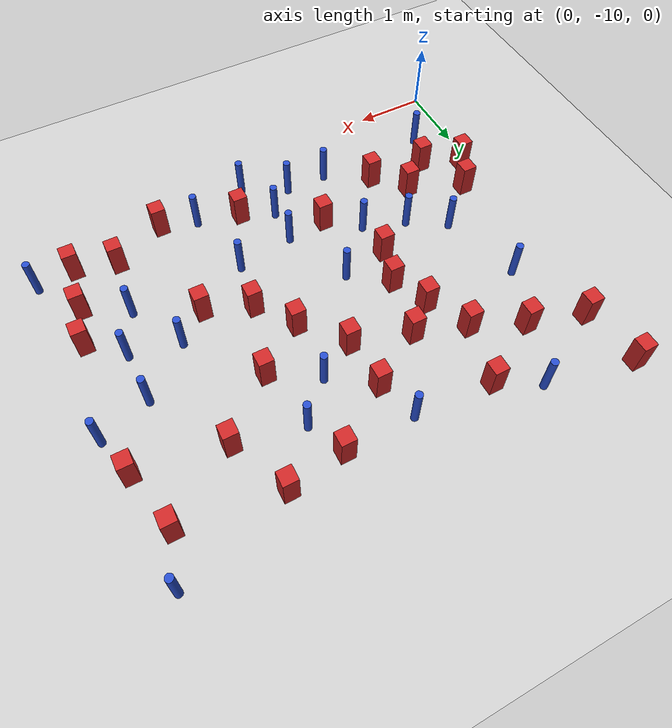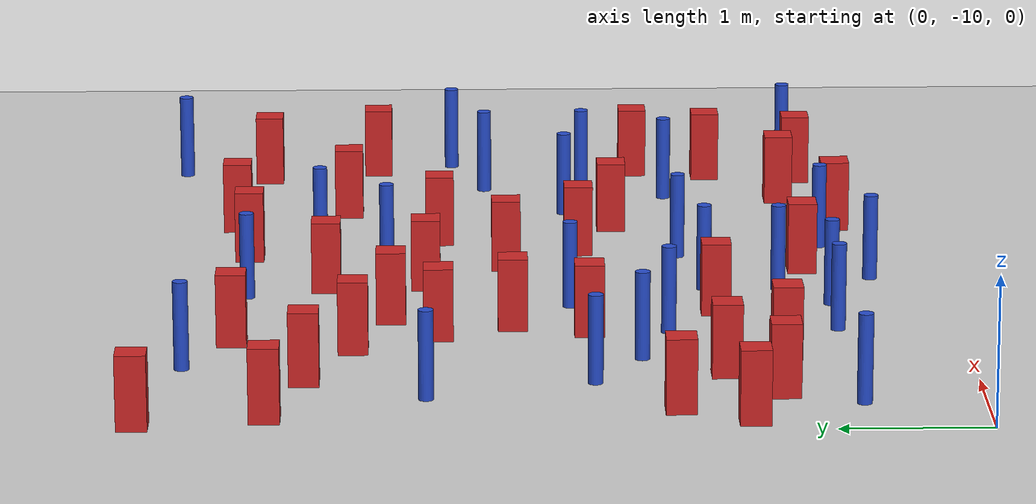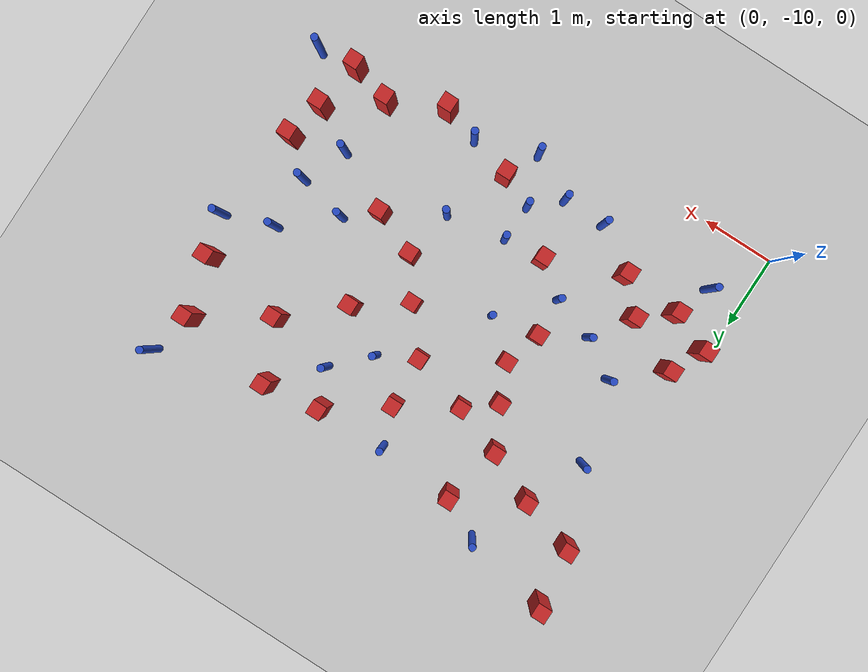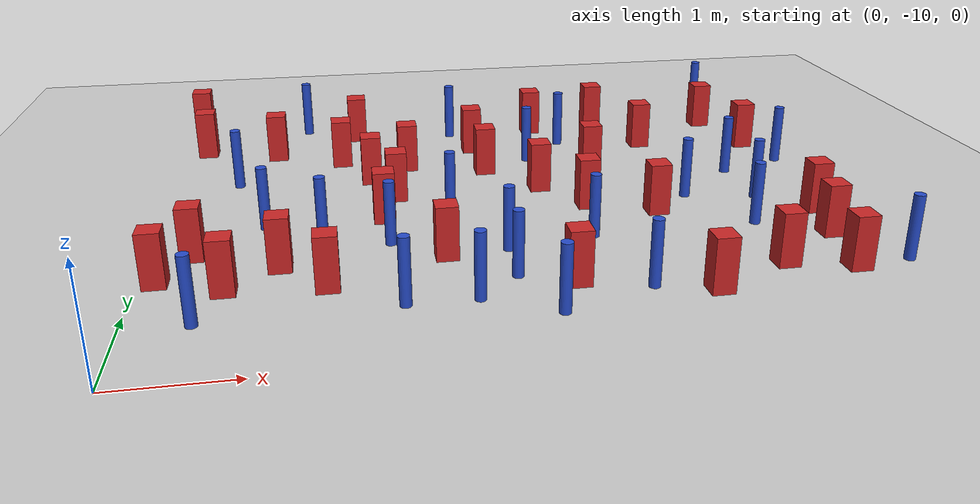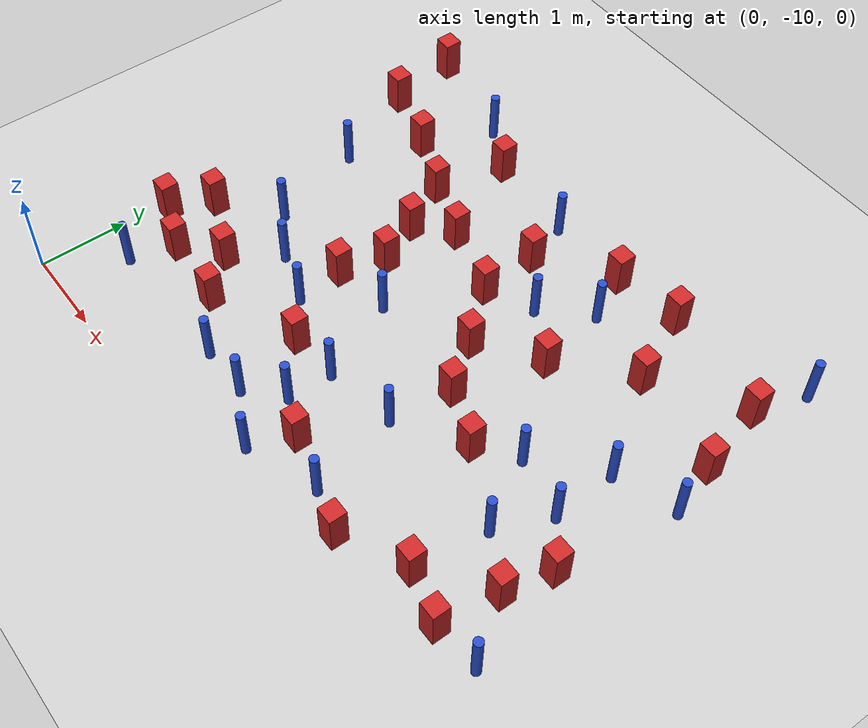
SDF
<sdf version="1.6">
 <world name="default">
  <model name="ground_plane">
   <static>1</static>
   <link name="link">
    <collision name="collision">
     <geometry><plane><normal>0 0 1</normal><size>100 100</size></plane></geometry>
     <surface><friction><ode><mu>100</mu><mu2>50</mu2></ode></friction></surface>
    </collision>
    <visual name="visual">
     <cast_shadows>0</cast_shadows>
     <geometry><plane><normal>0 0 1</normal><size>100 100</size></plane></geometry>
     <material>
      <ambient>1.0 1.0 1.0 1.0</ambient>
      <diffuse>0.8 0.8 0.8 1.0</diffuse>
      <specular>0.01 0.01 0.01 1.000000</specular>
     </material>
    </visual>
   </link>
  </model>
  <model name="pole_obstacle7">
   <static>true</static>
   <pose>1.34908433303 -4.80452183431 -9.47619616065e-06 5.49618799737e-07 2.36310414061e-07 -1.550905348e-07</pose>
   <link name="link">
    <pose>0 0 0.3 0 -0 0</pose>
    <inertial>
     <mass>1</mass>
     <inertia><ixx>0.145833</ixx><ixy>0</ixy><ixz>0</ixz><iyy>0.145833</iyy><iyz>0</iyz><izz>0.125</izz></inertia>
    </inertial>
    <collision name="collision">
     <geometry><cylinder><radius>0.05</radius><length>.6</length></cylinder></geometry>
    </collision>
    <visual name="visual">
     <geometry><cylinder><radius>0.05</radius><length>.6</length></cylinder></geometry>
     <material>
      <script><name>Gazebo/Blue</name><uri>file://media/materials/scripts/gazebo.material</uri></script>
     </material>
    </visual>
   </link>
  </model>
  <model name="square_post_obstacle10">
   <static>true</static>
   <pose>0.407130714451 -8.02818823955 -6.11067671241e-07 -5.50515727128e-06 -8.79689657224e-07 2.37013304536e-05</pose>
   <link name="link">
    <pose>0 0 0.25 0 -0 0</pose>
    <inertial>
     <mass>100</mass>
     <inertia>
      <ixx>0.166667</ixx>
      <ixy>0</ixy>
      <ixz>0</ixz>
      <iyy>0.166667</iyy>
      <iyz>0</iyz>
      <izz>0.166667</izz>
     </inertia>
    </inertial>
    <collision name="collision"><geometry><box><size>.2 .2 .5</size></box></geometry></collision>
    <visual name="visual">
     <geometry><box><size>.2 .2 .5</size></box></geometry>
     <material>
      <script><name>Gazebo/Red</name><uri>file://media/materials/scripts/gazebo.material</uri></script>
     </material>
    </visual>
   </link>
  </model>
  <model name="square_post_obstacle14">
   <static>true</static>
   <pose>3.66743329634 -6.95763202497 -6.11067671241e-07 -5.50515727128e-06 -8.79689657224e-07 2.37013304536e-05</pose>
   <link name="link">
    <pose>0 0 0.25 0 -0 0</pose>
    <inertial>
     <mass>100</mass>
     <inertia>
      <ixx>0.166667</ixx>
      <ixy>0</ixy>
      <ixz>0</ixz>
      <iyy>0.166667</iyy>
      <iyz>0</iyz>
      <izz>0.166667</izz>
     </inertia>
    </inertial>
    <collision name="collision"><geometry><box><size>.2 .2 .5</size></box></geometry></collision>
    <visual name="visual">
     <geometry><box><size>.2 .2 .5</size></box></geometry>
     <material>
      <script><name>Gazebo/Red</name><uri>file://media/materials/scripts/gazebo.material</uri></script>
     </material>
    </visual>
   </link>
  </model>
  <model name="square_post_obstacle16">
   <static>true</static>
   <pose>0.141960145137 -4.55436350031 -6.11067671241e-07 -5.50515727128e-06 -8.79689657224e-07 2.37013304536e-05</pose>
   <link name="link">
    <pose>0 0 0.25 0 -0 0</pose>
    <inertial>
     <mass>100</mass>
     <inertia>
      <ixx>0.166667</ixx>
      <ixy>0</ixy>
      <ixz>0</ixz>
      <iyy>0.166667</iyy>
      <iyz>0</iyz>
      <izz>0.166667</izz>
     </inertia>
    </inertial>
    <collision name="collision"><geometry><box><size>.2 .2 .5</size></box></geometry></collision>
    <visual name="visual">
     <geometry><box><size>.2 .2 .5</size></box></geometry>
     <material>
      <script><name>Gazebo/Red</name><uri>file://media/materials/scripts/gazebo.material</uri></script>
     </material>
    </visual>
   </link>
  </model>
  <model name="square_post_obstacle18">
   <static>true</static>
   <pose>4.31982985695 -6.49465137461 -6.11067671241e-07 -5.50515727128e-06 -8.79689657224e-07 2.37013304536e-05</pose>
   <link name="link">
    <pose>0 0 0.25 0 -0 0</pose>
    <inertial>
     <mass>100</mass>
     <inertia>
      <ixx>0.166667</ixx>
      <ixy>0</ixy>
      <ixz>0</ixz>
      <iyy>0.166667</iyy>
      <iyz>0</iyz>
      <izz>0.166667</izz>
     </inertia>
    </inertial>
    <collision name="collision"><geometry><box><size>.2 .2 .5</size></box></geometry></collision>
    <visual name="visual">
     <geometry><box><size>.2 .2 .5</size></box></geometry>
     <material>
      <script><name>Gazebo/Red</name><uri>file://media/materials/scripts/gazebo.material</uri></script>
     </material>
    </visual>
   </link>
  </model>
  <model name="square_post_obstacle21">
   <static>true</static>
   <pose>3.56158704081 -9.02046082583 -6.11067671241e-07 -5.50515727128e-06 -8.79689657224e-07 2.37013304536e-05</pose>
   <link name="link">
    <pose>0 0 0.25 0 -0 0</pose>
    <inertial>
     <mass>100</mass>
     <inertia>
      <ixx>0.166667</ixx>
      <ixy>0</ixy>
      <ixz>0</ixz>
      <iyy>0.166667</iyy>
      <iyz>0</iyz>
      <izz>0.166667</izz>
     </inertia>
    </inertial>
    <collision name="collision"><geometry><box><size>.2 .2 .5</size></box></geometry></collision>
    <visual name="visual">
     <geometry><box><size>.2 .2 .5</size></box></geometry>
     <material>
      <script><name>Gazebo/Red</name><uri>file://media/materials/scripts/gazebo.material</uri></script>
     </material>
    </visual>
   </link>
  </model>
  <model name="pole_obstacle18">
   <static>true</static>
   <pose>6.17961129785 -4.61160275627 -9.47619616065e-06 5.49618799737e-07 2.36310414037e-07 -1.55090534814e-07</pose>
   <link name="link">
    <pose>0 0 0.3 0 -0 0</pose>
    <inertial>
     <mass>1</mass>
     <inertia><ixx>0.145833</ixx><ixy>0</ixy><ixz>0</ixz><iyy>0.145833</iyy><iyz>0</iyz><izz>0.125</izz></inertia>
    </inertial>
    <collision name="collision">
     <geometry><cylinder><radius>0.05</radius><length>.6</length></cylinder></geometry>
    </collision>
    <visual name="visual">
     <geometry><cylinder><radius>0.05</radius><length>.6</length></cylinder></geometry>
     <material>
      <script><name>Gazebo/Blue</name><uri>file://media/materials/scripts/gazebo.material</uri></script>
     </material>
    </visual>
   </link>
  </model>
  <model name="square_post_obstacle28">
   <static>true</static>
   <pose>4.69967172629 -5.04763850451 -6.11067671241e-07 -5.50515727128e-06 -8.79689657224e-07 2.37013304536e-05</pose>
   <link name="link">
    <pose>0 0 0.25 0 -0 0</pose>
    <inertial>
     <mass>100</mass>
     <inertia>
      <ixx>0.166667</ixx>
      <ixy>0</ixy>
      <ixz>0</ixz>
      <iyy>0.166667</iyy>
      <iyz>0</iyz>
      <izz>0.166667</izz>
     </inertia>
    </inertial>
    <collision name="collision"><geometry><box><size>.2 .2 .5</size></box></geometry></collision>
    <visual name="visual">
     <geometry><box><size>.2 .2 .5</size></box></geometry>
     <material>
      <script><name>Gazebo/Red</name><uri>file://media/materials/scripts/gazebo.material</uri></script>
     </material>
    </visual>
   </link>
  </model>
  <model name="square_post_obstacle29">
   <static>true</static>
   <pose>0.725849916902 -8.71464412279 -6.11067671241e-07 -5.50515727128e-06 -8.79689657224e-07 2.37013304536e-05</pose>
   <link name="link">
    <pose>0 0 0.25 0 -0 0</pose>
    <inertial>
     <mass>100</mass>
     <inertia>
      <ixx>0.166667</ixx>
      <ixy>0</ixy>
      <ixz>0</ixz>
      <iyy>0.166667</iyy>
      <iyz>0</iyz>
      <izz>0.166667</izz>
     </inertia>
    </inertial>
    <collision name="collision"><geometry><box><size>.2 .2 .5</size></box></geometry></collision>
    <visual name="visual">
     <geometry><box><size>.2 .2 .5</size></box></geometry>
     <material>
      <script><name>Gazebo/Red</name><uri>file://media/materials/scripts/gazebo.material</uri></script>
     </material>
    </visual>
   </link>
  </model>
  <model name="square_post_obstacle33">
   <static>true</static>
   <pose>2.22971651345 -6.98378692423 -6.11067671241e-07 -5.50515727128e-06 -8.79689657224e-07 2.37013304536e-05</pose>
   <link name="link">
    <pose>0 0 0.25 0 -0 0</pose>
    <inertial>
     <mass>100</mass>
     <inertia>
      <ixx>0.166667</ixx>
      <ixy>0</ixy>
      <ixz>0</ixz>
      <iyy>0.166667</iyy>
      <iyz>0</iyz>
      <izz>0.166667</izz>
     </inertia>
    </inertial>
    <collision name="collision"><geometry><box><size>.2 .2 .5</size></box></geometry></collision>
    <visual name="visual">
     <geometry><box><size>.2 .2 .5</size></box></geometry>
     <material>
      <script><name>Gazebo/Red</name><uri>file://media/materials/scripts/gazebo.material</uri></script>
     </material>
    </visual>
   </link>
  </model>
  <model name="pole_obstacle34">
   <static>true</static>
   <pose>5.47738878881 -8.13779262181 -9.47619616065e-06 5.49618799737e-07 2.36310414065e-07 -1.55090534796e-07</pose>
   <link name="link">
    <pose>0 0 0.3 0 -0 0</pose>
    <inertial>
     <mass>1</mass>
     <inertia><ixx>0.145833</ixx><ixy>0</ixy><ixz>0</ixz><iyy>0.145833</iyy><iyz>0</iyz><izz>0.125</izz></inertia>
    </inertial>
    <collision name="collision">
     <geometry><cylinder><radius>0.05</radius><length>.6</length></cylinder></geometry>
    </collision>
    <visual name="visual">
     <geometry><cylinder><radius>0.05</radius><length>.6</length></cylinder></geometry>
     <material>
      <script><name>Gazebo/Blue</name><uri>file://media/materials/scripts/gazebo.material</uri></script>
     </material>
    </visual>
   </link>
  </model>
  <model name="square_post_obstacle40">
   <static>true</static>
   <pose>5.05714401454 -5.8405931482 -6.11067671241e-07 -5.50515727128e-06 -8.79689657224e-07 2.37013304536e-05</pose>
   <link name="link">
    <pose>0 0 0.25 0 -0 0</pose>
    <inertial>
     <mass>100</mass>
     <inertia>
      <ixx>0.166667</ixx>
      <ixy>0</ixy>
      <ixz>0</ixz>
      <iyy>0.166667</iyy>
      <iyz>0</iyz>
      <izz>0.166667</izz>
     </inertia>
    </inertial>
    <collision name="collision"><geometry><box><size>.2 .2 .5</size></box></geometry></collision>
    <visual name="visual">
     <geometry><box><size>.2 .2 .5</size></box></geometry>
     <material>
      <script><name>Gazebo/Red</name><uri>file://media/materials/scripts/gazebo.material</uri></script>
     </material>
    </visual>
   </link>
  </model>
  <model name="square_post_obstacle42">
   <static>true</static>
   <pose>2.40289939991 -6.16558606536 -6.11067671241e-07 -5.50515727128e-06 -8.79689657224e-07 2.37013304536e-05</pose>
   <link name="link">
    <pose>0 0 0.25 0 -0 0</pose>
    <inertial>
     <mass>100</mass>
     <inertia>
      <ixx>0.166667</ixx>
      <ixy>0</ixy>
      <ixz>0</ixz>
      <iyy>0.166667</iyy>
      <iyz>0</iyz>
      <izz>0.166667</izz>
     </inertia>
    </inertial>
    <collision name="collision"><geometry><box><size>.2 .2 .5</size></box></geometry></collision>
    <visual name="visual">
     <geometry><box><size>.2 .2 .5</size></box></geometry>
     <material>
      <script><name>Gazebo/Red</name><uri>file://media/materials/scripts/gazebo.material</uri></script>
     </material>
    </visual>
   </link>
  </model>
  <model name="square_post_obstacle49">
   <static>true</static>
   <pose>2.07918188248 -7.49389052052 -6.11067671241e-07 -5.50515727128e-06 -8.79689657224e-07 2.37013304536e-05</pose>
   <link name="link">
    <pose>0 0 0.25 0 -0 0</pose>
    <inertial>
     <mass>100</mass>
     <inertia>
      <ixx>0.166667</ixx>
      <ixy>0</ixy>
      <ixz>0</ixz>
      <iyy>0.166667</iyy>
      <iyz>0</iyz>
      <izz>0.166667</izz>
     </inertia>
    </inertial>
    <collision name="collision"><geometry><box><size>.2 .2 .5</size></box></geometry></collision>
    <visual name="visual">
     <geometry><box><size>.2 .2 .5</size></box></geometry>
     <material>
      <script><name>Gazebo/Red</name><uri>file://media/materials/scripts/gazebo.material</uri></script>
     </material>
    </visual>
   </link>
  </model>
  <model name="square_post_obstacle51">
   <static>true</static>
   <pose>3.19761014031 -6.3982853449 -6.11067671241e-07 -5.50515727128e-06 -8.79689657224e-07 2.37013304536e-05</pose>
   <link name="link">
    <pose>0 0 0.25 0 -0 0</pose>
    <inertial>
     <mass>100</mass>
     <inertia>
      <ixx>0.166667</ixx>
      <ixy>0</ixy>
      <ixz>0</ixz>
      <iyy>0.166667</iyy>
      <iyz>0</iyz>
      <izz>0.166667</izz>
     </inertia>
    </inertial>
    <collision name="collision"><geometry><box><size>.2 .2 .5</size></box></geometry></collision>
    <visual name="visual">
     <geometry><box><size>.2 .2 .5</size></box></geometry>
     <material>
      <script><name>Gazebo/Red</name><uri>file://media/materials/scripts/gazebo.material</uri></script>
     </material>
    </visual>
   </link>
  </model>
  <model name="pole_obstacle52">
   <static>true</static>
   <pose>0.992633948555 -7.50246726672 -9.47619616065e-06 5.49618799737e-07 2.36310414071e-07 -1.55090534793e-07</pose>
   <link name="link">
    <pose>0 0 0.3 0 -0 0</pose>
    <inertial>
     <mass>1</mass>
     <inertia><ixx>0.145833</ixx><ixy>0</ixy><ixz>0</ixz><iyy>0.145833</iyy><iyz>0</iyz><izz>0.125</izz></inertia>
    </inertial>
    <collision name="collision">
     <geometry><cylinder><radius>0.05</radius><length>.6</length></cylinder></geometry>
    </collision>
    <visual name="visual">
     <geometry><cylinder><radius>0.05</radius><length>.6</length></cylinder></geometry>
     <material>
      <script><name>Gazebo/Blue</name><uri>file://media/materials/scripts/gazebo.material</uri></script>
     </material>
    </visual>
   </link>
  </model>
  <model name="square_post_obstacle56">
   <static>true</static>
   <pose>6.00638868355 -5.23570216257 -6.11067671241e-07 -5.50515727128e-06 -8.79689657224e-07 2.37013304536e-05</pose>
   <link name="link">
    <pose>0 0 0.25 0 -0 0</pose>
    <inertial>
     <mass>100</mass>
     <inertia>
      <ixx>0.166667</ixx>
      <ixy>0</ixy>
      <ixz>0</ixz>
      <iyy>0.166667</iyy>
      <iyz>0</iyz>
      <izz>0.166667</izz>
     </inertia>
    </inertial>
    <collision name="collision"><geometry><box><size>.2 .2 .5</size></box></geometry></collision>
    <visual name="visual">
     <geometry><box><size>.2 .2 .5</size></box></geometry>
     <material>
      <script><name>Gazebo/Red</name><uri>file://media/materials/scripts/gazebo.material</uri></script>
     </material>
    </visual>
   </link>
  </model>
  <model name="pole_obstacle54">
   <static>true</static>
   <pose>0.675938714327 -6.40494919949 -9.47619616065e-06 5.49618799737e-07 2.36310414065e-07 -1.55090534796e-07</pose>
   <link name="link">
    <pose>0 0 0.3 0 -0 0</pose>
    <inertial>
     <mass>1</mass>
     <inertia><ixx>0.145833</ixx><ixy>0</ixy><ixz>0</ixz><iyy>0.145833</iyy><iyz>0</iyz><izz>0.125</izz></inertia>
    </inertial>
    <collision name="collision">
     <geometry><cylinder><radius>0.05</radius><length>.6</length></cylinder></geometry>
    </collision>
    <visual name="visual">
     <geometry><cylinder><radius>0.05</radius><length>.6</length></cylinder></geometry>
     <material>
      <script><name>Gazebo/Blue</name><uri>file://media/materials/scripts/gazebo.material</uri></script>
     </material>
    </visual>
   </link>
  </model>
  <model name="pole_obstacle57">
   <static>true</static>
   <pose>2.73288418721 -9.16623969708 -9.4761961606e-06 5.49618799729e-07 2.36310414e-07 -1.55090534824e-07</pose>
   <link name="link">
    <pose>0 0 0.3 0 -0 0</pose>
    <inertial>
     <mass>1</mass>
     <inertia><ixx>0.145833</ixx><ixy>0</ixy><ixz>0</ixz><iyy>0.145833</iyy><iyz>0</iyz><izz>0.125</izz></inertia>
    </inertial>
    <collision name="collision">
     <geometry><cylinder><radius>0.05</radius><length>.6</length></cylinder></geometry>
    </collision>
    <visual name="visual">
     <geometry><cylinder><radius>0.05</radius><length>.6</length></cylinder></geometry>
     <material>
      <script><name>Gazebo/Blue</name><uri>file://media/materials/scripts/gazebo.material</uri></script>
     </material>
    </visual>
   </link>
  </model>
  <model name="pole_obstacle60">
   <static>true</static>
   <pose>2.14256752114 -9.16689927869 -9.4761961606e-06 5.49618799729e-07 2.36310414e-07 -1.55090534824e-07</pose>
   <link name="link">
    <pose>0 0 0.3 0 -0 0</pose>
    <inertial>
     <mass>1</mass>
     <inertia><ixx>0.145833</ixx><ixy>0</ixy><ixz>0</ixz><iyy>0.145833</iyy><iyz>0</iyz><izz>0.125</izz></inertia>
    </inertial>
    <collision name="collision">
     <geometry><cylinder><radius>0.05</radius><length>.6</length></cylinder></geometry>
    </collision>
    <visual name="visual">
     <geometry><cylinder><radius>0.05</radius><length>.6</length></cylinder></geometry>
     <material>
      <script><name>Gazebo/Blue</name><uri>file://media/materials/scripts/gazebo.material</uri></script>
     </material>
    </visual>
   </link>
  </model>
  <model name="square_post_obstacle69">
   <static>true</static>
   <pose>0.166011643827 -8.48558077796 -6.11067671241e-07 -5.50515727128e-06 -8.79689657224e-07 2.37013304536e-05</pose>
   <link name="link">
    <pose>0 0 0.25 0 -0 0</pose>
    <inertial>
     <mass>100</mass>
     <inertia>
      <ixx>0.166667</ixx>
      <ixy>0</ixy>
      <ixz>0</ixz>
      <iyy>0.166667</iyy>
      <iyz>0</iyz>
      <izz>0.166667</izz>
     </inertia>
    </inertial>
    <collision name="collision"><geometry><box><size>.2 .2 .5</size></box></geometry></collision>
    <visual name="visual">
     <geometry><box><size>.2 .2 .5</size></box></geometry>
     <material>
      <script><name>Gazebo/Red</name><uri>file://media/materials/scripts/gazebo.material</uri></script>
     </material>
    </visual>
   </link>
  </model>
  <model name="pole_obstacle67">
   <static>true</static>
   <pose>1.50864287997 -7.82643699186 -9.47619616065e-06 5.49618799737e-07 2.36310414061e-07 -1.550905348e-07</pose>
   <link name="link">
    <pose>0 0 0.3 0 -0 0</pose>
    <inertial>
     <mass>1</mass>
     <inertia><ixx>0.145833</ixx><ixy>0</ixy><ixz>0</ixz><iyy>0.145833</iyy><iyz>0</iyz><izz>0.125</izz></inertia>
    </inertial>
    <collision name="collision">
     <geometry><cylinder><radius>0.05</radius><length>.6</length></cylinder></geometry>
    </collision>
    <visual name="visual">
     <geometry><cylinder><radius>0.05</radius><length>.6</length></cylinder></geometry>
     <material>
      <script><name>Gazebo/Blue</name><uri>file://media/materials/scripts/gazebo.material</uri></script>
     </material>
    </visual>
   </link>
  </model>
  <model name="square_post_obstacle76">
   <static>true</static>
   <pose>0.267456634779 -5.38251933433 -6.11067671241e-07 -5.50515727128e-06 -8.79689657224e-07 2.37013304536e-05</pose>
   <link name="link">
    <pose>0 0 0.25 0 -0 0</pose>
    <inertial>
     <mass>100</mass>
     <inertia>
      <ixx>0.166667</ixx>
      <ixy>0</ixy>
      <ixz>0</ixz>
      <iyy>0.166667</iyy>
      <iyz>0</iyz>
      <izz>0.166667</izz>
     </inertia>
    </inertial>
    <collision name="collision"><geometry><box><size>.2 .2 .5</size></box></geometry></collision>
    <visual name="visual">
     <geometry><box><size>.2 .2 .5</size></box></geometry>
     <material>
      <script><name>Gazebo/Red</name><uri>file://media/materials/scripts/gazebo.material</uri></script>
     </material>
    </visual>
   </link>
  </model>
  <model name="pole_obstacle79">
   <static>true</static>
   <pose>2.71446512604 -7.3818008289 -9.47619616065e-06 5.49618799738e-07 2.3631041406e-07 -1.55090534801e-07</pose>
   <link name="link">
    <pose>0 0 0.3 0 -0 0</pose>
    <inertial>
     <mass>1</mass>
     <inertia><ixx>0.145833</ixx><ixy>0</ixy><ixz>0</ixz><iyy>0.145833</iyy><iyz>0</iyz><izz>0.125</izz></inertia>
    </inertial>
    <collision name="collision">
     <geometry><cylinder><radius>0.05</radius><length>.6</length></cylinder></geometry>
    </collision>
    <visual name="visual">
     <geometry><cylinder><radius>0.05</radius><length>.6</length></cylinder></geometry>
     <material>
      <script><name>Gazebo/Blue</name><uri>file://media/materials/scripts/gazebo.material</uri></script>
     </material>
    </visual>
   </link>
  </model>
  <model name="pole_obstacle80">
   <static>true</static>
   <pose>3.11337447668 -8.31477604146 -9.4761961606e-06 5.49618799729e-07 2.36310414e-07 -1.55090534824e-07</pose>
   <link name="link">
    <pose>0 0 0.3 0 -0 0</pose>
    <inertial>
     <mass>1</mass>
     <inertia><ixx>0.145833</ixx><ixy>0</ixy><ixz>0</ixz><iyy>0.145833</iyy><iyz>0</iyz><izz>0.125</izz></inertia>
    </inertial>
    <collision name="collision">
     <geometry><cylinder><radius>0.05</radius><length>.6</length></cylinder></geometry>
    </collision>
    <visual name="visual">
     <geometry><cylinder><radius>0.05</radius><length>.6</length></cylinder></geometry>
     <material>
      <script><name>Gazebo/Blue</name><uri>file://media/materials/scripts/gazebo.material</uri></script>
     </material>
    </visual>
   </link>
  </model>
  <model name="pole_obstacle84">
   <static>true</static>
   <pose>5.71063122542 -6.82510719821 -9.47619616065e-06 5.49618799737e-07 2.36310414037e-07 -1.55090534814e-07</pose>
   <link name="link">
    <pose>0 0 0.3 0 -0 0</pose>
    <inertial>
     <mass>1</mass>
     <inertia><ixx>0.145833</ixx><ixy>0</ixy><ixz>0</ixz><iyy>0.145833</iyy><iyz>0</iyz><izz>0.125</izz></inertia>
    </inertial>
    <collision name="collision">
     <geometry><cylinder><radius>0.05</radius><length>.6</length></cylinder></geometry>
    </collision>
    <visual name="visual">
     <geometry><cylinder><radius>0.05</radius><length>.6</length></cylinder></geometry>
     <material>
      <script><name>Gazebo/Blue</name><uri>file://media/materials/scripts/gazebo.material</uri></script>
     </material>
    </visual>
   </link>
  </model>
  <model name="pole_obstacle91">
   <static>true</static>
   <pose>2.97536795037 -5.17589819531 -9.47619616065e-06 5.49618799738e-07 2.3631041406e-07 -1.55090534801e-07</pose>
   <link name="link">
    <pose>0 0 0.3 0 -0 0</pose>
    <inertial>
     <mass>1</mass>
     <inertia><ixx>0.145833</ixx><ixy>0</ixy><ixz>0</ixz><iyy>0.145833</iyy><iyz>0</iyz><izz>0.125</izz></inertia>
    </inertial>
    <collision name="collision">
     <geometry><cylinder><radius>0.05</radius><length>.6</length></cylinder></geometry>
    </collision>
    <visual name="visual">
     <geometry><cylinder><radius>0.05</radius><length>.6</length></cylinder></geometry>
     <material>
      <script><name>Gazebo/Blue</name><uri>file://media/materials/scripts/gazebo.material</uri></script>
     </material>
    </visual>
   </link>
  </model>
  <model name="square_post_obstacle87">
   <static>true</static>
   <pose>4.03629817482 -7.47250788294 -6.11067671241e-07 -5.50515727128e-06 -8.79689657224e-07 2.37013304536e-05</pose>
   <link name="link">
    <pose>0 0 0.25 0 -0 0</pose>
    <inertial>
     <mass>100</mass>
     <inertia>
      <ixx>0.166667</ixx>
      <ixy>0</ixy>
      <ixz>0</ixz>
      <iyy>0.166667</iyy>
      <iyz>0</iyz>
      <izz>0.166667</izz>
     </inertia>
    </inertial>
    <collision name="collision"><geometry><box><size>.2 .2 .5</size></box></geometry></collision>
    <visual name="visual">
     <geometry><box><size>.2 .2 .5</size></box></geometry>
     <material>
      <script><name>Gazebo/Red</name><uri>file://media/materials/scripts/gazebo.material</uri></script>
     </material>
    </visual>
   </link>
  </model>
  <model name="square_post_obstacle90">
   <static>true</static>
   <pose>1.90903445118 -5.11078884402 -6.11067671241e-07 -5.50515727128e-06 -8.79689657224e-07 2.37013304536e-05</pose>
   <link name="link">
    <pose>0 0 0.25 0 -0 0</pose>
    <inertial>
     <mass>100</mass>
     <inertia>
      <ixx>0.166667</ixx>
      <ixy>0</ixy>
      <ixz>0</ixz>
      <iyy>0.166667</iyy>
      <iyz>0</iyz>
      <izz>0.166667</izz>
     </inertia>
    </inertial>
    <collision name="collision"><geometry><box><size>.2 .2 .5</size></box></geometry></collision>
    <visual name="visual">
     <geometry><box><size>.2 .2 .5</size></box></geometry>
     <material>
      <script><name>Gazebo/Red</name><uri>file://media/materials/scripts/gazebo.material</uri></script>
     </material>
    </visual>
   </link>
  </model>
  <model name="pole_obstacle112">
   <static>true</static>
   <pose>3.3422395462 -9.48125631699 -9.4761961606e-06 5.49618799729e-07 2.36310414e-07 -1.55090534824e-07</pose>
   <link name="link">
    <pose>0 0 0.3 0 -0 0</pose>
    <inertial>
     <mass>1</mass>
     <inertia><ixx>0.145833</ixx><ixy>0</ixy><ixz>0</ixz><iyy>0.145833</iyy><iyz>0</iyz><izz>0.125</izz></inertia>
    </inertial>
    <collision name="collision">
     <geometry><cylinder><radius>0.05</radius><length>.6</length></cylinder></geometry>
    </collision>
    <visual name="visual">
     <geometry><cylinder><radius>0.05</radius><length>.6</length></cylinder></geometry>
     <material>
      <script><name>Gazebo/Blue</name><uri>file://media/materials/scripts/gazebo.material</uri></script>
     </material>
    </visual>
   </link>
  </model>
  <model name="square_post_obstacle103">
   <static>true</static>
   <pose>1.03385848441 -5.61323297278 -6.11067671241e-07 -5.50515727128e-06 -8.79689657224e-07 2.37013304536e-05</pose>
   <link name="link">
    <pose>0 0 0.25 0 -0 0</pose>
    <inertial>
     <mass>100</mass>
     <inertia>
      <ixx>0.166667</ixx>
      <ixy>0</ixy>
      <ixz>0</ixz>
      <iyy>0.166667</iyy>
      <iyz>0</iyz>
      <izz>0.166667</izz>
     </inertia>
    </inertial>
    <collision name="collision"><geometry><box><size>.2 .2 .5</size></box></geometry></collision>
    <visual name="visual">
     <geometry><box><size>.2 .2 .5</size></box></geometry>
     <material>
      <script><name>Gazebo/Red</name><uri>file://media/materials/scripts/gazebo.material</uri></script>
     </material>
    </visual>
   </link>
  </model>
  <model name="pole_obstacle119">
   <static>true</static>
   <pose>0.533758252269 -9.21078306435 -9.47619616065e-06 5.49618799738e-07 2.36310414034e-07 -1.55090534816e-07</pose>
   <link name="link">
    <pose>0 0 0.3 0 -0 0</pose>
    <inertial>
     <mass>1</mass>
     <inertia><ixx>0.145833</ixx><ixy>0</ixy><ixz>0</ixz><iyy>0.145833</iyy><iyz>0</iyz><izz>0.125</izz></inertia>
    </inertial>
    <collision name="collision">
     <geometry><cylinder><radius>0.05</radius><length>.6</length></cylinder></geometry>
    </collision>
    <visual name="visual">
     <geometry><cylinder><radius>0.05</radius><length>.6</length></cylinder></geometry>
     <material>
      <script><name>Gazebo/Blue</name><uri>file://media/materials/scripts/gazebo.material</uri></script>
     </material>
    </visual>
   </link>
  </model>
  <model name="square_post_obstacle117">
   <static>true</static>
   <pose>5.95195286555 -9.13581948915 -6.11067671241e-07 -5.50515727128e-06 -8.79689657224e-07 2.37013304536e-05</pose>
   <link name="link">
    <pose>0 0 0.25 0 -0 0</pose>
    <inertial>
     <mass>100</mass>
     <inertia>
      <ixx>0.166667</ixx>
      <ixy>0</ixy>
      <ixz>0</ixz>
      <iyy>0.166667</iyy>
      <iyz>0</iyz>
      <izz>0.166667</izz>
     </inertia>
    </inertial>
    <collision name="collision"><geometry><box><size>.2 .2 .5</size></box></geometry></collision>
    <visual name="visual">
     <geometry><box><size>.2 .2 .5</size></box></geometry>
     <material>
      <script><name>Gazebo/Red</name><uri>file://media/materials/scripts/gazebo.material</uri></script>
     </material>
    </visual>
   </link>
  </model>
  <model name="square_post_obstacle118">
   <static>true</static>
   <pose>1.15630987589 -8.3625074117 -6.11067671241e-07 -5.50515727128e-06 -8.79689657224e-07 2.37013304536e-05</pose>
   <link name="link">
    <pose>0 0 0.25 0 -0 0</pose>
    <inertial>
     <mass>100</mass>
     <inertia>
      <ixx>0.166667</ixx>
      <ixy>0</ixy>
      <ixz>0</ixz>
      <iyy>0.166667</iyy>
      <iyz>0</iyz>
      <izz>0.166667</izz>
     </inertia>
    </inertial>
    <collision name="collision"><geometry><box><size>.2 .2 .5</size></box></geometry></collision>
    <visual name="visual">
     <geometry><box><size>.2 .2 .5</size></box></geometry>
     <material>
      <script><name>Gazebo/Red</name><uri>file://media/materials/scripts/gazebo.material</uri></script>
     </material>
    </visual>
   </link>
  </model>
  <model name="square_post_obstacle135">
   <static>true</static>
   <pose>1.54722464028 -8.78169967268 -6.11067671241e-07 -5.50515727128e-06 -8.79689657224e-07 2.37013304536e-05</pose>
   <link name="link">
    <pose>0 0 0.25 0 -0 0</pose>
    <inertial>
     <mass>100</mass>
     <inertia>
      <ixx>0.166667</ixx>
      <ixy>0</ixy>
      <ixz>0</ixz>
      <iyy>0.166667</iyy>
      <iyz>0</iyz>
      <izz>0.166667</izz>
     </inertia>
    </inertial>
    <collision name="collision"><geometry><box><size>.2 .2 .5</size></box></geometry></collision>
    <visual name="visual">
     <geometry><box><size>.2 .2 .5</size></box></geometry>
     <material>
      <script><name>Gazebo/Red</name><uri>file://media/materials/scripts/gazebo.material</uri></script>
     </material>
    </visual>
   </link>
  </model>
  <model name="square_post_obstacle136">
   <static>true</static>
   <pose>2.00908603726 -6.48465872347 -6.11067671241e-07 -5.50515727128e-06 -8.79689657224e-07 2.37013304536e-05</pose>
   <link name="link">
    <pose>0 0 0.25 0 -0 0</pose>
    <inertial>
     <mass>100</mass>
     <inertia>
      <ixx>0.166667</ixx>
      <ixy>0</ixy>
      <ixz>0</ixz>
      <iyy>0.166667</iyy>
      <iyz>0</iyz>
      <izz>0.166667</izz>
     </inertia>
    </inertial>
    <collision name="collision"><geometry><box><size>.2 .2 .5</size></box></geometry></collision>
    <visual name="visual">
     <geometry><box><size>.2 .2 .5</size></box></geometry>
     <material>
      <script><name>Gazebo/Red</name><uri>file://media/materials/scripts/gazebo.material</uri></script>
     </material>
    </visual>
   </link>
  </model>
  <model name="square_post_obstacle138">
   <static>true</static>
   <pose>6.17475289814 -7.93121618508 -6.11067671241e-07 -5.50515727128e-06 -8.79689657224e-07 2.37013304536e-05</pose>
   <link name="link">
    <pose>0 0 0.25 0 -0 0</pose>
    <inertial>
     <mass>100</mass>
     <inertia>
      <ixx>0.166667</ixx>
      <ixy>0</ixy>
      <ixz>0</ixz>
      <iyy>0.166667</iyy>
      <iyz>0</iyz>
      <izz>0.166667</izz>
     </inertia>
    </inertial>
    <collision name="collision"><geometry><box><size>.2 .2 .5</size></box></geometry></collision>
    <visual name="visual">
     <geometry><box><size>.2 .2 .5</size></box></geometry>
     <material>
      <script><name>Gazebo/Red</name><uri>file://media/materials/scripts/gazebo.material</uri></script>
     </material>
    </visual>
   </link>
  </model>
  <model name="square_post_obstacle142">
   <static>true</static>
   <pose>6.0570134619 -8.46929295993 -6.11067671241e-07 -5.50515727128e-06 -8.79689657224e-07 2.37013304536e-05</pose>
   <link name="link">
    <pose>0 0 0.25 0 -0 0</pose>
    <inertial>
     <mass>100</mass>
     <inertia>
      <ixx>0.166667</ixx>
      <ixy>0</ixy>
      <ixz>0</ixz>
      <iyy>0.166667</iyy>
      <iyz>0</iyz>
      <izz>0.166667</izz>
     </inertia>
    </inertial>
    <collision name="collision"><geometry><box><size>.2 .2 .5</size></box></geometry></collision>
    <visual name="visual">
     <geometry><box><size>.2 .2 .5</size></box></geometry>
     <material>
      <script><name>Gazebo/Red</name><uri>file://media/materials/scripts/gazebo.material</uri></script>
     </material>
    </visual>
   </link>
  </model>
  <model name="pole_obstacle158">
   <static>true</static>
   <pose>4.15479232334 -9.18658260576 -9.47619616065e-06 5.49618799737e-07 2.36310414065e-07 -1.55090534796e-07</pose>
   <link name="link">
    <pose>0 0 0.3 0 -0 0</pose>
    <inertial>
     <mass>1</mass>
     <inertia><ixx>0.145833</ixx><ixy>0</ixy><ixz>0</ixz><iyy>0.145833</iyy><iyz>0</iyz><izz>0.125</izz></inertia>
    </inertial>
    <collision name="collision">
     <geometry><cylinder><radius>0.05</radius><length>.6</length></cylinder></geometry>
    </collision>
    <visual name="visual">
     <geometry><cylinder><radius>0.05</radius><length>.6</length></cylinder></geometry>
     <material>
      <script><name>Gazebo/Blue</name><uri>file://media/materials/scripts/gazebo.material</uri></script>
     </material>
    </visual>
   </link>
  </model>
  <model name="square_post_obstacle152">
   <static>true</static>
   <pose>6.21069993946 -6.04105760429 -6.11067671241e-07 -5.50515727128e-06 -8.79689657224e-07 2.37013304536e-05</pose>
   <link name="link">
    <pose>0 0 0.25 0 -0 0</pose>
    <inertial>
     <mass>100</mass>
     <inertia>
      <ixx>0.166667</ixx>
      <ixy>0</ixy>
      <ixz>0</ixz>
      <iyy>0.166667</iyy>
      <iyz>0</iyz>
      <izz>0.166667</izz>
     </inertia>
    </inertial>
    <collision name="collision"><geometry><box><size>.2 .2 .5</size></box></geometry></collision>
    <visual name="visual">
     <geometry><box><size>.2 .2 .5</size></box></geometry>
     <material>
      <script><name>Gazebo/Red</name><uri>file://media/materials/scripts/gazebo.material</uri></script>
     </material>
    </visual>
   </link>
  </model>
  <model name="pole_obstacle160">
   <static>true</static>
   <pose>3.9221077511 -8.16844400355 -9.4761961606e-06 5.49618799729e-07 2.36310414e-07 -1.55090534824e-07</pose>
   <link name="link">
    <pose>0 0 0.3 0 -0 0</pose>
    <inertial>
     <mass>1</mass>
     <inertia><ixx>0.145833</ixx><ixy>0</ixy><ixz>0</ixz><iyy>0.145833</iyy><iyz>0</iyz><izz>0.125</izz></inertia>
    </inertial>
    <collision name="collision">
     <geometry><cylinder><radius>0.05</radius><length>.6</length></cylinder></geometry>
    </collision>
    <visual name="visual">
     <geometry><cylinder><radius>0.05</radius><length>.6</length></cylinder></geometry>
     <material>
      <script><name>Gazebo/Blue</name><uri>file://media/materials/scripts/gazebo.material</uri></script>
     </material>
    </visual>
   </link>
  </model>
  <model name="pole_obstacle161">
   <static>true</static>
   <pose>4.15812917141 -5.65148755006 -9.47619616065e-06 5.49618799737e-07 2.36310414037e-07 -1.55090534814e-07</pose>
   <link name="link">
    <pose>0 0 0.3 0 -0 0</pose>
    <inertial>
     <mass>1</mass>
     <inertia><ixx>0.145833</ixx><ixy>0</ixy><ixz>0</ixz><iyy>0.145833</iyy><iyz>0</iyz><izz>0.125</izz></inertia>
    </inertial>
    <collision name="collision">
     <geometry><cylinder><radius>0.05</radius><length>.6</length></cylinder></geometry>
    </collision>
    <visual name="visual">
     <geometry><cylinder><radius>0.05</radius><length>.6</length></cylinder></geometry>
     <material>
      <script><name>Gazebo/Blue</name><uri>file://media/materials/scripts/gazebo.material</uri></script>
     </material>
    </visual>
   </link>
  </model>
  <model name="pole_obstacle163">
   <static>true</static>
   <pose>6.38558498494 -6.58615725726 -9.47619616065e-06 5.49618799737e-07 2.36310414037e-07 -1.55090534814e-07</pose>
   <link name="link">
    <pose>0 0 0.3 0 -0 0</pose>
    <inertial>
     <mass>1</mass>
     <inertia><ixx>0.145833</ixx><ixy>0</ixy><ixz>0</ixz><iyy>0.145833</iyy><iyz>0</iyz><izz>0.125</izz></inertia>
    </inertial>
    <collision name="collision">
     <geometry><cylinder><radius>0.05</radius><length>.6</length></cylinder></geometry>
    </collision>
    <visual name="visual">
     <geometry><cylinder><radius>0.05</radius><length>.6</length></cylinder></geometry>
     <material>
      <script><name>Gazebo/Blue</name><uri>file://media/materials/scripts/gazebo.material</uri></script>
     </material>
    </visual>
   </link>
  </model>
  <model name="square_post_obstacle162">
   <static>true</static>
   <pose>5.38543509809 -8.97389021024 -6.11067671241e-07 -5.50515727128e-06 -8.79689657224e-07 2.37013304536e-05</pose>
   <link name="link">
    <pose>0 0 0.25 0 -0 0</pose>
    <inertial>
     <mass>100</mass>
     <inertia>
      <ixx>0.166667</ixx>
      <ixy>0</ixy>
      <ixz>0</ixz>
      <iyy>0.166667</iyy>
      <iyz>0</iyz>
      <izz>0.166667</izz>
     </inertia>
    </inertial>
    <collision name="collision"><geometry><box><size>.2 .2 .5</size></box></geometry></collision>
    <visual name="visual">
     <geometry><box><size>.2 .2 .5</size></box></geometry>
     <material>
      <script><name>Gazebo/Red</name><uri>file://media/materials/scripts/gazebo.material</uri></script>
     </material>
    </visual>
   </link>
  </model>
  <model name="square_post_obstacle163">
   <static>true</static>
   <pose>2.55966380627 -8.36587936232 -6.11067671241e-07 -5.50515727128e-06 -8.79689657224e-07 2.37013304536e-05</pose>
   <link name="link">
    <pose>0 0 0.25 0 -0 0</pose>
    <inertial>
     <mass>100</mass>
     <inertia>
      <ixx>0.166667</ixx>
      <ixy>0</ixy>
      <ixz>0</ixz>
      <iyy>0.166667</iyy>
      <iyz>0</iyz>
      <izz>0.166667</izz>
     </inertia>
    </inertial>
    <collision name="collision"><geometry><box><size>.2 .2 .5</size></box></geometry></collision>
    <visual name="visual">
     <geometry><box><size>.2 .2 .5</size></box></geometry>
     <material>
      <script><name>Gazebo/Red</name><uri>file://media/materials/scripts/gazebo.material</uri></script>
     </material>
    </visual>
   </link>
  </model>
  <model name="square_post_obstacle164">
   <static>true</static>
   <pose>4.6568305061 -7.72324169549 -6.11067671241e-07 -5.50515727128e-06 -8.79689657224e-07 2.37013304536e-05</pose>
   <link name="link">
    <pose>0 0 0.25 0 -0 0</pose>
    <inertial>
     <mass>100</mass>
     <inertia>
      <ixx>0.166667</ixx>
      <ixy>0</ixy>
      <ixz>0</ixz>
      <iyy>0.166667</iyy>
      <iyz>0</iyz>
      <izz>0.166667</izz>
     </inertia>
    </inertial>
    <collision name="collision"><geometry><box><size>.2 .2 .5</size></box></geometry></collision>
    <visual name="visual">
     <geometry><box><size>.2 .2 .5</size></box></geometry>
     <material>
      <script><name>Gazebo/Red</name><uri>file://media/materials/scripts/gazebo.material</uri></script>
     </material>
    </visual>
   </link>
  </model>
  <model name="pole_obstacle184">
   <static>true</static>
   <pose>3.70126332534 -6.12536792147 -9.47619616065e-06 5.49618799738e-07 2.3631041406e-07 -1.55090534801e-07</pose>
   <link name="link">
    <pose>0 0 0.3 0 -0 0</pose>
    <inertial>
     <mass>1</mass>
     <inertia><ixx>0.145833</ixx><ixy>0</ixy><ixz>0</ixz><iyy>0.145833</iyy><iyz>0</iyz><izz>0.125</izz></inertia>
    </inertial>
    <collision name="collision">
     <geometry><cylinder><radius>0.05</radius><length>.6</length></cylinder></geometry>
    </collision>
    <visual name="visual">
     <geometry><cylinder><radius>0.05</radius><length>.6</length></cylinder></geometry>
     <material>
      <script><name>Gazebo/Blue</name><uri>file://media/materials/scripts/gazebo.material</uri></script>
     </material>
    </visual>
   </link>
  </model>
  <model name="square_post_obstacle175">
   <static>true</static>
   <pose>1.72087766363 -5.92049945791 -6.11067671241e-07 -5.50515727128e-06 -8.79689657224e-07 2.37013304536e-05</pose>
   <link name="link">
    <pose>0 0 0.25 0 -0 0</pose>
    <inertial>
     <mass>100</mass>
     <inertia>
      <ixx>0.166667</ixx>
      <ixy>0</ixy>
      <ixz>0</ixz>
      <iyy>0.166667</iyy>
      <iyz>0</iyz>
      <izz>0.166667</izz>
     </inertia>
    </inertial>
    <collision name="collision"><geometry><box><size>.2 .2 .5</size></box></geometry></collision>
    <visual name="visual">
     <geometry><box><size>.2 .2 .5</size></box></geometry>
     <material>
      <script><name>Gazebo/Red</name><uri>file://media/materials/scripts/gazebo.material</uri></script>
     </material>
    </visual>
   </link>
  </model>
  <model name="square_post_obstacle183">
   <static>true</static>
   <pose>3.92936079743 -5.15931922831 -6.11067671241e-07 -5.50515727128e-06 -8.79689657224e-07 2.37013304536e-05</pose>
   <link name="link">
    <pose>0 0 0.25 0 -0 0</pose>
    <inertial>
     <mass>100</mass>
     <inertia>
      <ixx>0.166667</ixx>
      <ixy>0</ixy>
      <ixz>0</ixz>
      <iyy>0.166667</iyy>
      <iyz>0</iyz>
      <izz>0.166667</izz>
     </inertia>
    </inertial>
    <collision name="collision"><geometry><box><size>.2 .2 .5</size></box></geometry></collision>
    <visual name="visual">
     <geometry><box><size>.2 .2 .5</size></box></geometry>
     <material>
      <script><name>Gazebo/Red</name><uri>file://media/materials/scripts/gazebo.material</uri></script>
     </material>
    </visual>
   </link>
  </model>
  <model name="square_post_obstacle195">
   <static>true</static>
   <pose>3.15214669365 -5.71420177724 -6.11067671241e-07 -5.50515727128e-06 -8.79689657224e-07 2.37013304536e-05</pose>
   <link name="link">
    <pose>0 0 0.25 0 -0 0</pose>
    <inertial>
     <mass>100</mass>
     <inertia>
      <ixx>0.166667</ixx>
      <ixy>0</ixy>
      <ixz>0</ixz>
      <iyy>0.166667</iyy>
      <iyz>0</iyz>
      <izz>0.166667</izz>
     </inertia>
    </inertial>
    <collision name="collision"><geometry><box><size>.2 .2 .5</size></box></geometry></collision>
    <visual name="visual">
     <geometry><box><size>.2 .2 .5</size></box></geometry>
     <material>
      <script><name>Gazebo/Red</name><uri>file://media/materials/scripts/gazebo.material</uri></script>
     </material>
    </visual>
   </link>
  </model>
  <model name="pole_obstacle195">
   <static>true</static>
   <pose>5.05906718562 -7.39727149838 -9.47619616065e-06 5.49618799737e-07 2.36310414037e-07 -1.55090534814e-07</pose>
   <link name="link">
    <pose>0 0 0.3 0 -0 0</pose>
    <inertial>
     <mass>1</mass>
     <inertia><ixx>0.145833</ixx><ixy>0</ixy><ixz>0</ixz><iyy>0.145833</iyy><iyz>0</iyz><izz>0.125</izz></inertia>
    </inertial>
    <collision name="collision">
     <geometry><cylinder><radius>0.05</radius><length>.6</length></cylinder></geometry>
    </collision>
    <visual name="visual">
     <geometry><cylinder><radius>0.05</radius><length>.6</length></cylinder></geometry>
     <material>
      <script><name>Gazebo/Blue</name><uri>file://media/materials/scripts/gazebo.material</uri></script>
     </material>
    </visual>
   </link>
  </model>
  <model name="pole_obstacle196">
   <static>true</static>
   <pose>3.09930252017 -8.82557671528 -9.4761961606e-06 5.49618799729e-07 2.36310414e-07 -1.55090534824e-07</pose>
   <link name="link">
    <pose>0 0 0.3 0 -0 0</pose>
    <inertial>
     <mass>1</mass>
     <inertia><ixx>0.145833</ixx><ixy>0</ixy><ixz>0</ixz><iyy>0.145833</iyy><iyz>0</iyz><izz>0.125</izz></inertia>
    </inertial>
    <collision name="collision">
     <geometry><cylinder><radius>0.05</radius><length>.6</length></cylinder></geometry>
    </collision>
    <visual name="visual">
     <geometry><cylinder><radius>0.05</radius><length>.6</length></cylinder></geometry>
     <material>
      <script><name>Gazebo/Blue</name><uri>file://media/materials/scripts/gazebo.material</uri></script>
     </material>
    </visual>
   </link>
  </model>
  <model name="pole_obstacle200">
   <static>true</static>
   <pose>6.47450716069 -9.07719638392 -9.47619616065e-06 5.49618799737e-07 2.36310414065e-07 -1.55090534796e-07</pose>
   <link name="link">
    <pose>0 0 0.3 0 -0 0</pose>
    <inertial>
     <mass>1</mass>
     <inertia><ixx>0.145833</ixx><ixy>0</ixy><ixz>0</ixz><iyy>0.145833</iyy><iyz>0</iyz><izz>0.125</izz></inertia>
    </inertial>
    <collision name="collision">
     <geometry><cylinder><radius>0.05</radius><length>.6</length></cylinder></geometry>
    </collision>
    <visual name="visual">
     <geometry><cylinder><radius>0.05</radius><length>.6</length></cylinder></geometry>
     <material>
      <script><name>Gazebo/Blue</name><uri>file://media/materials/scripts/gazebo.material</uri></script>
     </material>
    </visual>
   </link>
  </model>
  <model name="pole_obstacle202">
   <static>true</static>
   <pose>2.103100611 -8.02689174885 -9.47619616065e-06 5.49618799738e-07 2.36310414023e-07 -1.55090534823e-07</pose>
   <link name="link">
    <pose>0 0 0.3 0 -0 0</pose>
    <inertial>
     <mass>1</mass>
     <inertia><ixx>0.145833</ixx><ixy>0</ixy><ixz>0</ixz><iyy>0.145833</iyy><iyz>0</iyz><izz>0.125</izz></inertia>
    </inertial>
    <collision name="collision">
     <geometry><cylinder><radius>0.05</radius><length>.6</length></cylinder></geometry>
    </collision>
    <visual name="visual">
     <geometry><cylinder><radius>0.05</radius><length>.6</length></cylinder></geometry>
     <material>
      <script><name>Gazebo/Blue</name><uri>file://media/materials/scripts/gazebo.material</uri></script>
     </material>
    </visual>
   </link>
  </model>
  <model name="square_post_obstacle221">
   <static>true</static>
   <pose>4.65376368297 -9.33020328638 -6.11067671241e-07 -5.50515727128e-06 -8.79689657224e-07 2.37013304536e-05</pose>
   <link name="link">
    <pose>0 0 0.25 0 -0 0</pose>
    <inertial>
     <mass>100</mass>
     <inertia>
      <ixx>0.166667</ixx>
      <ixy>0</ixy>
      <ixz>0</ixz>
      <iyy>0.166667</iyy>
      <iyz>0</iyz>
      <izz>0.166667</izz>
     </inertia>
    </inertial>
    <collision name="collision"><geometry><box><size>.2 .2 .5</size></box></geometry></collision>
    <visual name="visual">
     <geometry><box><size>.2 .2 .5</size></box></geometry>
     <material>
      <script><name>Gazebo/Red</name><uri>file://media/materials/scripts/gazebo.material</uri></script>
     </material>
    </visual>
   </link>
  </model>
  <model name="pole_obstacle208">
   <static>true</static>
   <pose>5.7341395139 -7.54101921265 -9.47619616065e-06 5.49618799737e-07 2.36310414037e-07 -1.55090534814e-07</pose>
   <link name="link">
    <pose>0 0 0.3 0 -0 0</pose>
    <inertial>
     <mass>1</mass>
     <inertia><ixx>0.145833</ixx><ixy>0</ixy><ixz>0</ixz><iyy>0.145833</iyy><iyz>0</iyz><izz>0.125</izz></inertia>
    </inertial>
    <collision name="collision">
     <geometry><cylinder><radius>0.05</radius><length>.6</length></cylinder></geometry>
    </collision>
    <visual name="visual">
     <geometry><cylinder><radius>0.05</radius><length>.6</length></cylinder></geometry>
     <material>
      <script><name>Gazebo/Blue</name><uri>file://media/materials/scripts/gazebo.material</uri></script>
     </material>
    </visual>
   </link>
  </model>
 </world>
</sdf>
